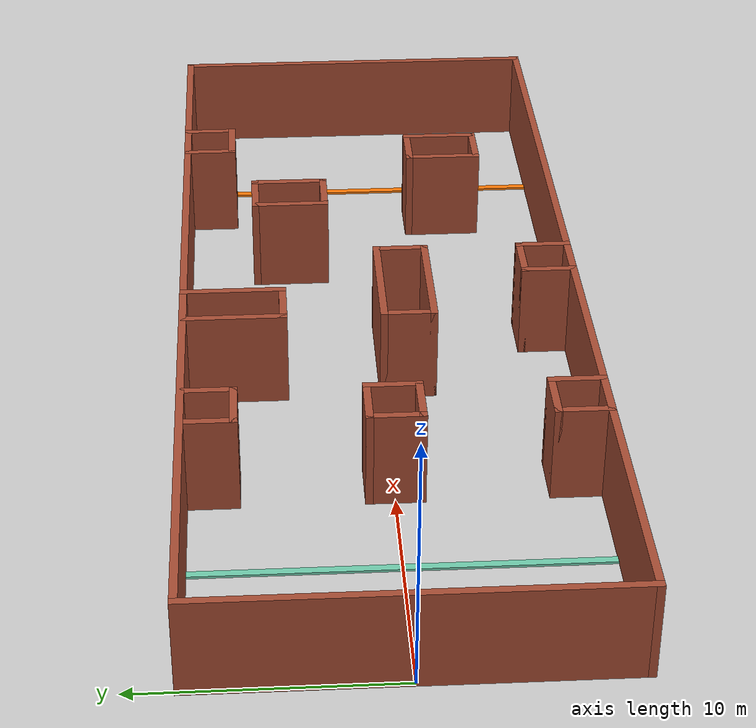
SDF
<sdf version="1.6">
 <world name="indoor8">
  <plugin name="gz::sim::systems::Physics" filename="gz-sim-physics-system"/>
  <plugin name="gz::sim::systems::UserCommands" filename="gz-sim-user-commands-system"/>
  <plugin name="gz::sim::systems::SceneBroadcaster" filename="gz-sim-scene-broadcaster-system"/>
  <plugin name="gz::sim::systems::Contact" filename="gz-sim-contact-system"/>
  <plugin name="gz::sim::systems::Imu" filename="gz-sim-imu-system"/>
  <plugin name="gz::sim::systems::AirPressure" filename="gz-sim-air-pressure-system"/>
  <plugin name="gz::sim::systems::ApplyLinkWrench" filename="gz-sim-apply-link-wrench-system"/>
  <plugin name="gz::sim::systems::NavSat" filename="gz-sim-navsat-system"/>
  <plugin name="gz::sim::systems::Sensors" filename="gz-sim-sensors-system">
   <render_engine>ogre2</render_engine>
  </plugin>
  <light name="sun" type="directional">
   <pose>0 0 10 0 -0 0</pose>
   <diffuse>0.8 0.8 0.8 1</diffuse>
   <specular>0.2 0.2 0.2 1</specular>
   <attenuation>
    <range>1000</range>
    <constant>0.9</constant>
    <linear>0.01</linear>
    <quadratic>0.001</quadratic>
   </attenuation>
   <direction>-0.5 0.1 -0.9</direction>
  </light>
  <model name="ground_plane">
   <static>1</static>
   <link name="link">
    <collision name="collision">
     <geometry><plane><normal>0 0 1</normal><size>100 100</size></plane></geometry>
     <surface><friction><ode><mu>100</mu><mu2>50</mu2></ode></friction></surface>
    </collision>
    <visual name="visual">
     <cast_shadows>0</cast_shadows>
     <geometry><plane><normal>0 0 1</normal><size>100 100</size></plane></geometry>
     <material>
      <script><uri>file://media/materials/scripts/gazebo.material</uri><name>Gazebo/Grey</name></script>
     </material>
    </visual>
   </link>
  </model>
  <physics name="default_physics" default="0" type="ode">
   <ode>
    <solver>
     <type>quick</type>
     <iters>10</iters>
     <sor>1.3</sor>
     <use_dynamic_moi_rescaling>0</use_dynamic_moi_rescaling>
    </solver>
    <constraints>
     <cfm>0</cfm>
     <erp>0.2</erp>
     <contact_max_correcting_vel>100</contact_max_correcting_vel>
     <contact_surface_layer>0.001</contact_surface_layer>
    </constraints>
   </ode>
   <max_step_size>0.004</max_step_size>
   <real_time_factor>1</real_time_factor>
   <real_time_update_rate>250</real_time_update_rate>
  </physics>
  <gravity>0 0 -9.8066</gravity>
  <magnetic_field>6e-06 2.3e-05 -4.2e-05</magnetic_field>
  <atmosphere type="adiabatic"/>
  <scene><ambient>0.4 0.4 0.4 1</ambient><background>0.7 0.7 0.7 1</background><shadows>1</shadows></scene>
  <audio><device>default</device></audio>
  <spherical_coordinates>
   <surface_model>EARTH_WGS84</surface_model>
   <latitude_deg>0</latitude_deg>
   <longitude_deg>0</longitude_deg>
   <elevation>0</elevation>
   <heading_deg>0</heading_deg>
  </spherical_coordinates>
  <model name="House_Long_1">
   <pose>20 0 0 0 -0 0</pose>
   <link name="Wall_0">
    <collision name="Wall_0_Collision">
     <geometry><box><size>16.3 0.3 4</size></box></geometry>
     <pose>0 0 2 0 -0 0</pose>
    </collision>
    <visual name="Wall_0_Visual">
     <pose>0 0 2 0 -0 0</pose>
     <geometry><box><size>16.3 0.3 4</size></box></geometry>
     <material>
      <script><uri>file://media/materials/scripts/gazebo.material</uri><name>Gazebo/Bricks</name></script>
      <ambient>1 1 1 1</ambient>
     </material>
     <meta><layer>0</layer></meta>
    </visual>
    <pose>-20 0 0 0 -0 1.5708</pose>
   </link>
   <link name="Wall_1">
    <collision name="Wall_1_Collision">
     <geometry><box><size>40.3 0.3 4</size></box></geometry>
     <pose>0 0 2 0 -0 0</pose>
    </collision>
    <visual name="Wall_1_Visual">
     <pose>0 0 2 0 -0 0</pose>
     <geometry><box><size>40.3 0.3 4</size></box></geometry>
     <material>
      <script><uri>file://media/materials/scripts/gazebo.material</uri><name>Gazebo/Bricks</name></script>
      <ambient>1 1 1 1</ambient>
     </material>
     <meta><layer>0</layer></meta>
    </visual>
    <pose>-0 8 0 0 -0 0</pose>
   </link>
   <link name="Wall_10">
    <collision name="Wall_10_Collision">
     <geometry><box><size>2.3 0.3 4</size></box></geometry>
     <pose>0 0 2 0 -0 0</pose>
    </collision>
    <visual name="Wall_10_Visual">
     <pose>0 0 2 0 -0 0</pose>
     <geometry><box><size>2.3 0.3 4</size></box></geometry>
     <material>
      <script><uri>file://media/materials/scripts/gazebo.material</uri><name>Gazebo/Bricks</name></script>
      <ambient>1 1 1 1</ambient>
     </material>
     <meta><layer>0</layer></meta>
    </visual>
    <pose>-9 -1 0 0 -0 0</pose>
   </link>
   <link name="Wall_11">
    <collision name="Wall_11_Collision">
     <geometry><box><size>2.3 0.3 4</size></box></geometry>
     <pose>0 0 2 0 -0 0</pose>
    </collision>
    <visual name="Wall_11_Visual">
     <pose>0 0 2 0 -0 0</pose>
     <geometry><box><size>2.3 0.3 4</size></box></geometry>
     <material>
      <script><uri>file://media/materials/scripts/gazebo.material</uri><name>Gazebo/Bricks</name></script>
      <ambient>1 1 1 1</ambient>
     </material>
     <meta><layer>0</layer></meta>
    </visual>
    <pose>-8 0 0 0 -0 1.5708</pose>
   </link>
   <link name="Wall_12">
    <collision name="Wall_12_Collision">
     <geometry><box><size>2.3 0.3 4</size></box></geometry>
     <pose>0 0 2 0 -0 0</pose>
    </collision>
    <visual name="Wall_12_Visual">
     <pose>0 0 2 0 -0 0</pose>
     <geometry><box><size>2.3 0.3 4</size></box></geometry>
     <material>
      <script><uri>file://media/materials/scripts/gazebo.material</uri><name>Gazebo/Bricks</name></script>
      <ambient>1 1 1 1</ambient>
     </material>
     <meta><layer>0</layer></meta>
    </visual>
    <pose>-9 1 0 0 -0 3.14159</pose>
   </link>
   <link name="Wall_14">
    <collision name="Wall_14_Collision">
     <geometry><box><size>2.3 0.3 4</size></box></geometry>
     <pose>0 0 2 0 -0 0</pose>
    </collision>
    <visual name="Wall_14_Visual">
     <pose>0 0 2 0 -0 0</pose>
     <geometry><box><size>2.3 0.3 4</size></box></geometry>
     <material>
      <script><uri>file://media/materials/scripts/gazebo.material</uri><name>Gazebo/Bricks</name></script>
      <ambient>1 1 1 1</ambient>
     </material>
     <meta><layer>0</layer></meta>
    </visual>
    <pose>-10 -7 0 0 -0 1.5708</pose>
   </link>
   <link name="Wall_15">
    <collision name="Wall_15_Collision">
     <geometry><box><size>2.3 0.3 4</size></box></geometry>
     <pose>0 0 2 0 -0 0</pose>
    </collision>
    <visual name="Wall_15_Visual">
     <pose>0 0 2 0 -0 0</pose>
     <geometry><box><size>2.3 0.3 4</size></box></geometry>
     <material>
      <script><uri>file://media/materials/scripts/gazebo.material</uri><name>Gazebo/Bricks</name></script>
      <ambient>1 1 1 1</ambient>
     </material>
     <meta><layer>0</layer></meta>
    </visual>
    <pose>-9 -6 0 0 -0 0</pose>
   </link>
   <link name="Wall_16">
    <collision name="Wall_16_Collision">
     <geometry><box><size>2.3 0.3 4</size></box></geometry>
     <pose>0 0 2 0 -0 0</pose>
    </collision>
    <visual name="Wall_16_Visual">
     <pose>0 0 2 0 -0 0</pose>
     <geometry><box><size>2.3 0.3 4</size></box></geometry>
     <material>
      <script><uri>file://media/materials/scripts/gazebo.material</uri><name>Gazebo/Bricks</name></script>
      <ambient>1 1 1 1</ambient>
     </material>
     <meta><layer>0</layer></meta>
    </visual>
    <pose>-8 -7 0 0 -0 -1.5708</pose>
   </link>
   <link name="Wall_18">
    <collision name="Wall_18_Collision">
     <geometry><box><size>4.3 0.3 4</size></box></geometry>
     <pose>0 0 2 0 -0 0</pose>
    </collision>
    <visual name="Wall_18_Visual">
     <pose>0 0 2 0 -0 0</pose>
     <geometry><box><size>4.3 0.3 4</size></box></geometry>
     <material>
      <script><uri>file://media/materials/scripts/gazebo.material</uri><name>Gazebo/Bricks</name></script>
      <ambient>1 1 1 1</ambient>
     </material>
     <meta><layer>0</layer></meta>
    </visual>
    <pose>-3 6 0 0 -0 -1.5708</pose>
   </link>
   <link name="Wall_19">
    <collision name="Wall_19_Collision">
     <geometry><box><size>2.3 0.3 4</size></box></geometry>
     <pose>0 0 2 0 -0 0</pose>
    </collision>
    <visual name="Wall_19_Visual">
     <pose>0 0 2 0 -0 0</pose>
     <geometry><box><size>2.3 0.3 4</size></box></geometry>
     <material>
      <script><uri>file://media/materials/scripts/gazebo.material</uri><name>Gazebo/Bricks</name></script>
      <ambient>1 1 1 1</ambient>
     </material>
     <meta><layer>0</layer></meta>
    </visual>
    <pose>-2 4 0 0 -0 0</pose>
   </link>
   <link name="Wall_2">
    <collision name="Wall_2_Collision">
     <geometry><box><size>16.3 0.3 4</size></box></geometry>
     <pose>0 0 2 0 -0 0</pose>
    </collision>
    <visual name="Wall_2_Visual">
     <pose>0 0 2 0 -0 0</pose>
     <geometry><box><size>16.3 0.3 4</size></box></geometry>
     <material>
      <script><uri>file://media/materials/scripts/gazebo.material</uri><name>Gazebo/Bricks</name></script>
      <ambient>1 1 1 1</ambient>
     </material>
     <meta><layer>0</layer></meta>
    </visual>
    <pose>20 0 0 0 -0 -1.5708</pose>
   </link>
   <link name="Wall_20">
    <collision name="Wall_20_Collision">
     <geometry><box><size>4.3 0.3 4</size></box></geometry>
     <pose>0 0 2 0 -0 0</pose>
    </collision>
    <visual name="Wall_20_Visual">
     <pose>0 0 2 0 -0 0</pose>
     <geometry><box><size>4.3 0.3 4</size></box></geometry>
     <material>
      <script><uri>file://media/materials/scripts/gazebo.material</uri><name>Gazebo/Bricks</name></script>
      <ambient>1 1 1 1</ambient>
     </material>
     <meta><layer>0</layer></meta>
    </visual>
    <pose>-1 6 0 0 -0 1.5708</pose>
   </link>
   <link name="Wall_22">
    <collision name="Wall_22_Collision">
     <geometry><box><size>2.3 0.3 4</size></box></geometry>
     <pose>0 0 2 0 -0 0</pose>
    </collision>
    <visual name="Wall_22_Visual">
     <pose>0 0 2 0 -0 0</pose>
     <geometry><box><size>2.3 0.3 4</size></box></geometry>
     <material>
      <script><uri>file://media/materials/scripts/gazebo.material</uri><name>Gazebo/Bricks</name></script>
      <ambient>1 1 1 1</ambient>
     </material>
     <meta><layer>0</layer></meta>
    </visual>
    <pose>-3 -1 0 0 -0 -1.5708</pose>
   </link>
   <link name="Wall_23">
    <collision name="Wall_23_Collision">
     <geometry><box><size>5.3 0.3 4</size></box></geometry>
     <pose>0 0 2 0 -0 0</pose>
    </collision>
    <visual name="Wall_23_Visual">
     <pose>0 0 2 0 -0 0</pose>
     <geometry><box><size>5.3 0.3 4</size></box></geometry>
     <material>
      <script><uri>file://media/materials/scripts/gazebo.material</uri><name>Gazebo/Bricks</name></script>
      <ambient>1 1 1 1</ambient>
     </material>
     <meta><layer>0</layer></meta>
    </visual>
    <pose>-0.5 -2 0 0 -0 0</pose>
   </link>
   <link name="Wall_24">
    <collision name="Wall_24_Collision">
     <geometry><box><size>2.3 0.3 4</size></box></geometry>
     <pose>0 0 2 0 -0 0</pose>
    </collision>
    <visual name="Wall_24_Visual">
     <pose>0 0 2 0 -0 0</pose>
     <geometry><box><size>2.3 0.3 4</size></box></geometry>
     <material>
      <script><uri>file://media/materials/scripts/gazebo.material</uri><name>Gazebo/Bricks</name></script>
      <ambient>1 1 1 1</ambient>
     </material>
     <meta><layer>0</layer></meta>
    </visual>
    <pose>2 -1 0 0 -0 1.5708</pose>
   </link>
   <link name="Wall_25">
    <collision name="Wall_25_Collision">
     <geometry><box><size>5.3 0.3 4</size></box></geometry>
     <pose>0 0 2 0 -0 0</pose>
    </collision>
    <visual name="Wall_25_Visual">
     <pose>0 0 2 0 -0 0</pose>
     <geometry><box><size>5.3 0.3 4</size></box></geometry>
     <material>
      <script><uri>file://media/materials/scripts/gazebo.material</uri><name>Gazebo/Bricks</name></script>
      <ambient>1 1 1 1</ambient>
     </material>
     <meta><layer>0</layer></meta>
    </visual>
    <pose>-0.5 0 0 0 -0 3.14159</pose>
   </link>
   <link name="Wall_27">
    <collision name="Wall_27_Collision">
     <geometry><box><size>2.3 0.3 4</size></box></geometry>
     <pose>0 0 2 0 -0 0</pose>
    </collision>
    <visual name="Wall_27_Visual">
     <pose>0 0 2 0 -0 0</pose>
     <geometry><box><size>2.3 0.3 4</size></box></geometry>
     <material>
      <script><uri>file://media/materials/scripts/gazebo.material</uri><name>Gazebo/Bricks</name></script>
      <ambient>1 1 1 1</ambient>
     </material>
     <meta><layer>0</layer></meta>
    </visual>
    <pose>-0 -7 0 0 -0 1.5708</pose>
   </link>
   <link name="Wall_28">
    <collision name="Wall_28_Collision">
     <geometry><box><size>2.3 0.3 4</size></box></geometry>
     <pose>0 0 2 0 -0 0</pose>
    </collision>
    <visual name="Wall_28_Visual">
     <pose>0 0 2 0 -0 0</pose>
     <geometry><box><size>2.3 0.3 4</size></box></geometry>
     <material>
      <script><uri>file://media/materials/scripts/gazebo.material</uri><name>Gazebo/Bricks</name></script>
      <ambient>1 1 1 1</ambient>
     </material>
     <meta><layer>0</layer></meta>
    </visual>
    <pose>1 -6 0 0 -0 0</pose>
   </link>
   <link name="Wall_29">
    <collision name="Wall_29_Collision">
     <geometry><box><size>2.3 0.3 4</size></box></geometry>
     <pose>0 0 2 0 -0 0</pose>
    </collision>
    <visual name="Wall_29_Visual">
     <pose>0 0 2 0 -0 0</pose>
     <geometry><box><size>2.3 0.3 4</size></box></geometry>
     <material>
      <script><uri>file://media/materials/scripts/gazebo.material</uri><name>Gazebo/Bricks</name></script>
      <ambient>1 1 1 1</ambient>
     </material>
     <meta><layer>0</layer></meta>
    </visual>
    <pose>2 -7 0 0 -0 -1.5708</pose>
   </link>
   <link name="Wall_3">
    <collision name="Wall_3_Collision">
     <geometry><box><size>40.3 0.3 4</size></box></geometry>
     <pose>0 0 2 0 -0 0</pose>
    </collision>
    <visual name="Wall_3_Visual">
     <pose>0 0 2 0 -0 0</pose>
     <geometry><box><size>40.3 0.3 4</size></box></geometry>
     <material>
      <script><uri>file://media/materials/scripts/gazebo.material</uri><name>Gazebo/Bricks</name></script>
      <ambient>1 1 1 1</ambient>
     </material>
     <meta><layer>0</layer></meta>
    </visual>
    <pose>-0 -8 0 0 -0 3.14159</pose>
   </link>
   <link name="Wall_31">
    <collision name="Wall_31_Collision">
     <geometry><box><size>3.3 0.3 4</size></box></geometry>
     <pose>0 0 2 0 -0 0</pose>
    </collision>
    <visual name="Wall_31_Visual">
     <pose>0 0 2 0 -0 0</pose>
     <geometry><box><size>3.3 0.3 4</size></box></geometry>
     <material>
      <script><uri>file://media/materials/scripts/gazebo.material</uri><name>Gazebo/Bricks</name></script>
      <ambient>1 1 1 1</ambient>
     </material>
     <meta><layer>0</layer></meta>
    </visual>
    <pose>6 3.5 0 0 -0 -1.5708</pose>
   </link>
   <link name="Wall_32">
    <collision name="Wall_32_Collision">
     <geometry><box><size>2.3 0.3 4</size></box></geometry>
     <pose>0 0 2 0 -0 0</pose>
    </collision>
    <visual name="Wall_32_Visual">
     <pose>0 0 2 0 -0 0</pose>
     <geometry><box><size>2.3 0.3 4</size></box></geometry>
     <material>
      <script><uri>file://media/materials/scripts/gazebo.material</uri><name>Gazebo/Bricks</name></script>
      <ambient>1 1 1 1</ambient>
     </material>
     <meta><layer>0</layer></meta>
    </visual>
    <pose>7 2 0 0 -0 0</pose>
   </link>
   <link name="Wall_33">
    <collision name="Wall_33_Collision">
     <geometry><box><size>3.3 0.3 4</size></box></geometry>
     <pose>0 0 2 0 -0 0</pose>
    </collision>
    <visual name="Wall_33_Visual">
     <pose>0 0 2 0 -0 0</pose>
     <geometry><box><size>3.3 0.3 4</size></box></geometry>
     <material>
      <script><uri>file://media/materials/scripts/gazebo.material</uri><name>Gazebo/Bricks</name></script>
      <ambient>1 1 1 1</ambient>
     </material>
     <meta><layer>0</layer></meta>
    </visual>
    <pose>8 3.5 0 0 -0 1.5708</pose>
   </link>
   <link name="Wall_34">
    <collision name="Wall_34_Collision">
     <geometry><box><size>2.3 0.3 4</size></box></geometry>
     <pose>0 0 2 0 -0 0</pose>
    </collision>
    <visual name="Wall_34_Visual">
     <pose>0 0 2 0 -0 0</pose>
     <geometry><box><size>2.3 0.3 4</size></box></geometry>
     <material>
      <script><uri>file://media/materials/scripts/gazebo.material</uri><name>Gazebo/Bricks</name></script>
      <ambient>1 1 1 1</ambient>
     </material>
     <meta><layer>0</layer></meta>
    </visual>
    <pose>7 5 0 0 -0 3.14159</pose>
   </link>
   <link name="Wall_36">
    <collision name="Wall_36_Collision">
     <geometry><box><size>2.3 0.3 4</size></box></geometry>
     <pose>0 0 2 0 -0 0</pose>
    </collision>
    <visual name="Wall_36_Visual">
     <pose>0 0 2 0 -0 0</pose>
     <geometry><box><size>2.3 0.3 4</size></box></geometry>
     <material>
      <script><uri>file://media/materials/scripts/gazebo.material</uri><name>Gazebo/Bricks</name></script>
      <ambient>1 1 1 1</ambient>
     </material>
     <meta><layer>0</layer></meta>
    </visual>
    <pose>11 7 0 0 -0 -1.5708</pose>
   </link>
   <link name="Wall_37">
    <collision name="Wall_37_Collision">
     <geometry><box><size>2.3 0.3 4</size></box></geometry>
     <pose>0 0 2 0 -0 0</pose>
    </collision>
    <visual name="Wall_37_Visual">
     <pose>0 0 2 0 -0 0</pose>
     <geometry><box><size>2.3 0.3 4</size></box></geometry>
     <material>
      <script><uri>file://media/materials/scripts/gazebo.material</uri><name>Gazebo/Bricks</name></script>
      <ambient>1 1 1 1</ambient>
     </material>
     <meta><layer>0</layer></meta>
    </visual>
    <pose>12 6 0 0 -0 0</pose>
   </link>
   <link name="Wall_38">
    <collision name="Wall_38_Collision">
     <geometry><box><size>2.3 0.3 4</size></box></geometry>
     <pose>0 0 2 0 -0 0</pose>
    </collision>
    <visual name="Wall_38_Visual">
     <pose>0 0 2 0 -0 0</pose>
     <geometry><box><size>2.3 0.3 4</size></box></geometry>
     <material>
      <script><uri>file://media/materials/scripts/gazebo.material</uri><name>Gazebo/Bricks</name></script>
      <ambient>1 1 1 1</ambient>
     </material>
     <meta><layer>0</layer></meta>
    </visual>
    <pose>13 7 0 0 -0 1.5708</pose>
   </link>
   <link name="Wall_40">
    <collision name="Wall_40_Collision">
     <geometry><box><size>3.3 0.3 4</size></box></geometry>
     <pose>0 0 2 0 -0 0</pose>
    </collision>
    <visual name="Wall_40_Visual">
     <pose>0 0 2 0 -0 0</pose>
     <geometry><box><size>3.3 0.3 4</size></box></geometry>
     <material>
      <script><uri>file://media/materials/scripts/gazebo.material</uri><name>Gazebo/Bricks</name></script>
      <ambient>1 1 1 1</ambient>
     </material>
     <meta><layer>0</layer></meta>
    </visual>
    <pose>10 -3.5 0 0 -0 -1.5708</pose>
   </link>
   <link name="Wall_41">
    <collision name="Wall_41_Collision">
     <geometry><box><size>2.3 0.3 4</size></box></geometry>
     <pose>0 0 2 0 -0 0</pose>
    </collision>
    <visual name="Wall_41_Visual">
     <pose>0 0 2 0 -0 0</pose>
     <geometry><box><size>2.3 0.3 4</size></box></geometry>
     <material>
      <script><uri>file://media/materials/scripts/gazebo.material</uri><name>Gazebo/Bricks</name></script>
      <ambient>1 1 1 1</ambient>
     </material>
     <meta><layer>0</layer></meta>
    </visual>
    <pose>11 -5 0 0 -0 0</pose>
   </link>
   <link name="Wall_42">
    <collision name="Wall_42_Collision">
     <geometry><box><size>3.3 0.3 4</size></box></geometry>
     <pose>0 0 2 0 -0 0</pose>
    </collision>
    <visual name="Wall_42_Visual">
     <pose>0 0 2 0 -0 0</pose>
     <geometry><box><size>3.3 0.3 4</size></box></geometry>
     <material>
      <script><uri>file://media/materials/scripts/gazebo.material</uri><name>Gazebo/Bricks</name></script>
      <ambient>1 1 1 1</ambient>
     </material>
     <meta><layer>0</layer></meta>
    </visual>
    <pose>12 -3.5 0 0 -0 1.5708</pose>
   </link>
   <link name="Wall_43">
    <collision name="Wall_43_Collision">
     <geometry><box><size>2.3 0.3 4</size></box></geometry>
     <pose>0 0 2 0 -0 0</pose>
    </collision>
    <visual name="Wall_43_Visual">
     <pose>0 0 2 0 -0 0</pose>
     <geometry><box><size>2.3 0.3 4</size></box></geometry>
     <material>
      <script><uri>file://media/materials/scripts/gazebo.material</uri><name>Gazebo/Bricks</name></script>
      <ambient>1 1 1 1</ambient>
     </material>
     <meta><layer>0</layer></meta>
    </visual>
    <pose>11 -2 0 0 -0 3.14159</pose>
   </link>
   <link name="Wall_45">
    <collision name="Wall_45_Collision">
     <geometry><box><size>16.3 0.3 0.1</size></box></geometry>
     <pose>0 0 0.05 0 -0 0</pose>
    </collision>
    <visual name="Wall_45_Visual">
     <pose>0 0 0.05 0 -0 0</pose>
     <geometry><box><size>16.3 0.3 0.1</size></box></geometry>
     <material>
      <script><uri>file://media/materials/scripts/gazebo.material</uri><name>Gazebo/Grey</name></script>
      <ambient>0.435294 0.796078 0.67451 1</ambient>
     </material>
     <meta><layer>0</layer></meta>
    </visual>
    <pose>-14 0 0 0 -0 -1.5708</pose>
   </link>
   <link name="Wall_47">
    <collision name="Wall_47_Collision">
     <geometry><box><size>16.3 0.3 0.1</size></box></geometry>
     <pose>0 0 0.05 0 -0 0</pose>
    </collision>
    <visual name="Wall_47_Visual">
     <pose>0 0 0.05 0 -0 0</pose>
     <geometry><box><size>16.3 0.3 0.1</size></box></geometry>
     <material>
      <script><uri>file://media/materials/scripts/gazebo.material</uri><name>Gazebo/Grey</name></script>
      <ambient>0.996078 0.47451 0.0196078 1</ambient>
     </material>
     <meta><layer>0</layer></meta>
    </visual>
    <pose>14 0 0 0 -0 -1.5708</pose>
   </link>
   <link name="Wall_5">
    <collision name="Wall_5_Collision">
     <geometry><box><size>2.3 0.3 4</size></box></geometry>
     <pose>0 0 2 0 -0 0</pose>
    </collision>
    <visual name="Wall_5_Visual">
     <pose>0 0 2 0 -0 0</pose>
     <geometry><box><size>2.3 0.3 4</size></box></geometry>
     <material>
      <script><uri>file://media/materials/scripts/gazebo.material</uri><name>Gazebo/Bricks</name></script>
      <ambient>1 1 1 1</ambient>
     </material>
     <meta><layer>0</layer></meta>
    </visual>
    <pose>-10 7 0 0 -0 -1.5708</pose>
   </link>
   <link name="Wall_6">
    <collision name="Wall_6_Collision">
     <geometry><box><size>2.3 0.3 4</size></box></geometry>
     <pose>0 0 2 0 -0 0</pose>
    </collision>
    <visual name="Wall_6_Visual">
     <pose>0 0 2 0 -0 0</pose>
     <geometry><box><size>2.3 0.3 4</size></box></geometry>
     <material>
      <script><uri>file://media/materials/scripts/gazebo.material</uri><name>Gazebo/Bricks</name></script>
      <ambient>1 1 1 1</ambient>
     </material>
     <meta><layer>0</layer></meta>
    </visual>
    <pose>-9 6 0 0 -0 0</pose>
   </link>
   <link name="Wall_7">
    <collision name="Wall_7_Collision">
     <geometry><box><size>2.3 0.3 4</size></box></geometry>
     <pose>0 0 2 0 -0 0</pose>
    </collision>
    <visual name="Wall_7_Visual">
     <pose>0 0 2 0 -0 0</pose>
     <geometry><box><size>2.3 0.3 4</size></box></geometry>
     <material>
      <script><uri>file://media/materials/scripts/gazebo.material</uri><name>Gazebo/Bricks</name></script>
      <ambient>1 1 1 1</ambient>
     </material>
     <meta><layer>0</layer></meta>
    </visual>
    <pose>-8 7 0 0 -0 1.5708</pose>
   </link>
   <link name="Wall_9">
    <collision name="Wall_9_Collision">
     <geometry><box><size>2.3 0.3 4</size></box></geometry>
     <pose>0 0 2 0 -0 0</pose>
    </collision>
    <visual name="Wall_9_Visual">
     <pose>0 0 2 0 -0 0</pose>
     <geometry><box><size>2.3 0.3 4</size></box></geometry>
     <material>
      <script><uri>file://media/materials/scripts/gazebo.material</uri><name>Gazebo/Bricks</name></script>
      <ambient>1 1 1 1</ambient>
     </material>
     <meta><layer>0</layer></meta>
    </visual>
    <pose>-10 0 0 0 -0 -1.5708</pose>
   </link>
   <static>1</static>
  </model>
 </world>
</sdf>
